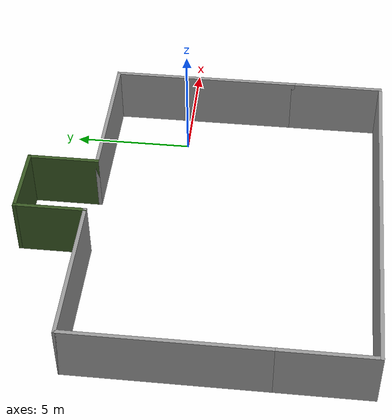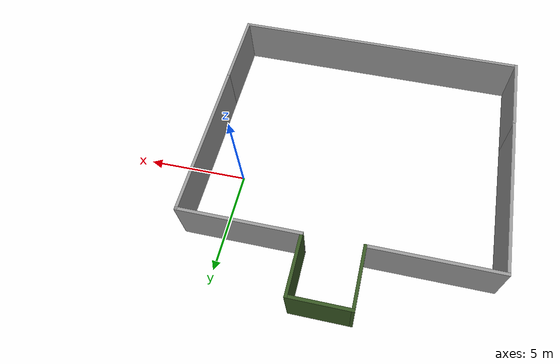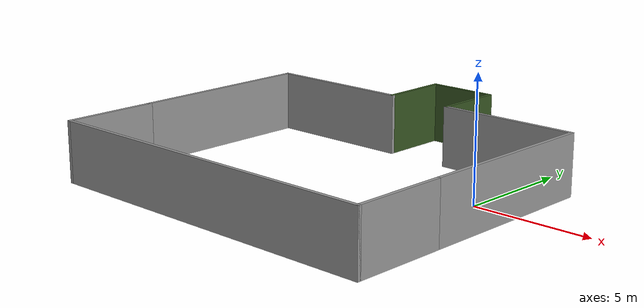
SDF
<?xml version='1.0'?>
<sdf version='1.7'>
  <model name='Imav_outer_structure'>
    <pose>-5.55739 -1.09867 0 0 0 1.57</pose>
    <link name='Wall_11'>
      <collision name='Wall_11_Collision'>
        <geometry>
          <box>
            <size>4 0.15 2.5</size>
          </box>
        </geometry>
        <pose>0 0 1.25 0 -0 0</pose>
      </collision>
      <visual name='Wall_11_Visual'>
        <pose>0 0 1.25 0 -0 0</pose>
        <geometry>
          <box>
            <size>4 0.15 2.5</size>
          </box>
        </geometry>
        <material>
          <script>
            <uri>file://media/materials/scripts/gazebo.material</uri>
            <name>Gazebo/Grey</name>
          </script>
          <ambient>0.74902 0.74902 0.74902 1</ambient>
        </material>
        <meta>
          <layer>0</layer>
        </meta>
      </visual>
      <pose>-5.35 7.425 0 0 -0 3.14159</pose>
    </link>
    <link name='Wall_15'>
      <collision name='Wall_15_Collision'>
        <geometry>
          <box>
            <size>15 0.15 2.5</size>
          </box>
        </geometry>
        <pose>0 0 1.25 0 -0 0</pose>
      </collision>
      <visual name='Wall_15_Visual'>
        <pose>0 0 1.25 0 -0 0</pose>
        <geometry>
          <box>
            <size>15 0.15 2.5</size>
          </box>
        </geometry>
        <material>
          <script>
            <uri>file://media/materials/scripts/gazebo.material</uri>
            <name>Gazebo/Grey</name>
          </script>
          <ambient>0.74902 0.74902 0.74902 1</ambient>
        </material>
        <meta>
          <layer>0</layer>
        </meta>
      </visual>
      <pose>-7.275 0 0 0 -0 -1.5708</pose>
    </link>
    <link name='Wall_17'>
      <collision name='Wall_17_Collision'>
        <geometry>
          <box>
            <size>4 0.15 2.5</size>
          </box>
        </geometry>
        <pose>0 0 1.25 0 -0 0</pose>
      </collision>
      <visual name='Wall_17_Visual'>
        <pose>0 0 1.25 0 -0 0</pose>
        <geometry>
          <box>
            <size>4 0.15 2.5</size>
          </box>
        </geometry>
        <material>
          <script>
            <uri>file://media/materials/scripts/gazebo.material</uri>
            <name>Gazebo/Grey</name>
          </script>
          <ambient>0.74902 0.74902 0.74902 1</ambient>
        </material>
        <meta>
          <layer>0</layer>
        </meta>
      </visual>
      <pose>-5.35 -7.425 0 0 -0 0</pose>
    </link>
    <link name='Wall_18'>
      <collision name='Wall_18_Collision'>
        <geometry>
          <box>
            <size>8 0.15 2.5</size>
          </box>
        </geometry>
        <pose>0 0 1.25 0 -0 0</pose>
      </collision>
      <visual name='Wall_18_Visual'>
        <pose>0 0 1.25 0 -0 0</pose>
        <geometry>
          <box>
            <size>8 0.15 2.5</size>
          </box>
        </geometry>
        <material>
          <script>
            <uri>file://media/materials/scripts/gazebo.material</uri>
            <name>Gazebo/Grey</name>
          </script>
          <ambient>0.74902 0.74902 0.74902 1</ambient>
        </material>
        <meta>
          <layer>0</layer>
        </meta>
      </visual>
      <pose>0.5 -7.425 0 0 -0 0</pose>
    </link>
    <link name='Wall_22'>
      <collision name='Wall_22_Collision'>
        <geometry>
          <box>
            <size>6 0.15 2.5</size>
          </box>
        </geometry>
        <pose>0 0 1.25 0 -0 0</pose>
      </collision>
      <visual name='Wall_22_Visual'>
        <pose>0 0 1.25 0 -0 0</pose>
        <geometry>
          <box>
            <size>6 0.15 2.5</size>
          </box>
        </geometry>
        <material>
          <script>
            <uri>file://media/materials/scripts/gazebo.material</uri>
            <name>Gazebo/Grey</name>
          </script>
          <ambient>0.74902 0.74902 0.74902 1</ambient>
        </material>
        <meta>
          <layer>0</layer>
        </meta>
      </visual>
      <pose>4.425 -4.5 0 0 -0 1.5708</pose>
    </link>
    <link name='Wall_23'>
      <collision name='Wall_23_Collision'>
        <geometry>
          <box>
            <size>3 0.15 2.5</size>
          </box>
        </geometry>
        <pose>0 0 1.25 0 -0 0</pose>
      </collision>
      <visual name='Wall_23_Visual'>
        <pose>0 0 1.25 0 -0 0</pose>
        <geometry>
          <box>
            <size>3 0.15 2.5</size>
          </box>
        </geometry>
        <material>
          <script>
            <uri>file://media/materials/scripts/gazebo.material</uri>
            <name>Gazebo/Grey</name>
          </script>
          <ambient>0.219608 0.341176 0.137255 1</ambient>
        </material>
        <meta>
          <layer>0</layer>
        </meta>
      </visual>
      <pose>5.85 -1.575 0 0 -0 0</pose>
    </link>
    <link name='Wall_24'>
      <collision name='Wall_24_Collision'>
        <geometry>
          <box>
            <size>3 0.15 2.5</size>
          </box>
        </geometry>
        <pose>0 0 1.25 0 -0 0</pose>
      </collision>
      <visual name='Wall_24_Visual'>
        <pose>0 0 1.25 0 -0 0</pose>
        <geometry>
          <box>
            <size>3 0.15 2.5</size>
          </box>
        </geometry>
        <material>
          <script>
            <uri>file://media/materials/scripts/gazebo.material</uri>
            <name>Gazebo/Grey</name>
          </script>
          <ambient>0.219608 0.341176 0.137255 1</ambient>
        </material>
        <meta>
          <layer>0</layer>
        </meta>
      </visual>
      <pose>7.275 -0.15 0 0 -0 1.5708</pose>
    </link>
    <link name='Wall_25'>
      <collision name='Wall_25_Collision'>
        <geometry>
          <box>
            <size>3 0.15 2.5</size>
          </box>
        </geometry>
        <pose>0 0 1.25 0 -0 0</pose>
      </collision>
      <visual name='Wall_25_Visual'>
        <pose>0 0 1.25 0 -0 0</pose>
        <geometry>
          <box>
            <size>3 0.15 2.5</size>
          </box>
        </geometry>
        <material>
          <script>
            <uri>file://media/materials/scripts/gazebo.material</uri>
            <name>Gazebo/Grey</name>
          </script>
          <ambient>0.219608 0.341176 0.137255 1</ambient>
        </material>
        <meta>
          <layer>0</layer>
        </meta>
      </visual>
      <pose>5.85 1.275 0 0 -0 3.14159</pose>
    </link>
    <link name='Wall_27'>
      <collision name='Wall_27_Collision'>
        <geometry>
          <box>
            <size>6.3 0.15 2.5</size>
          </box>
        </geometry>
        <pose>0 0 1.25 0 -0 0</pose>
      </collision>
      <visual name='Wall_27_Visual'>
        <pose>0 0 1.25 0 -0 0</pose>
        <geometry>
          <box>
            <size>6.3 0.15 2.5</size>
          </box>
        </geometry>
        <material>
          <script>
            <uri>file://media/materials/scripts/gazebo.material</uri>
            <name>Gazebo/Grey</name>
          </script>
          <ambient>0.74902 0.74902 0.74902 1</ambient>
        </material>
        <meta>
          <layer>0</layer>
        </meta>
      </visual>
      <pose>4.425 4.35 0 0 -0 -1.5708</pose>
    </link>
    <link name='Wall_9'>
      <collision name='Wall_9_Collision'>
        <geometry>
          <box>
            <size>8 0.15 2.5</size>
          </box>
        </geometry>
        <pose>0 0 1.25 0 -0 0</pose>
      </collision>
      <visual name='Wall_9_Visual'>
        <pose>0 0 1.25 0 -0 0</pose>
        <geometry>
          <box>
            <size>8 0.15 2.5</size>
          </box>
        </geometry>
        <material>
          <script>
            <uri>file://media/materials/scripts/gazebo.material</uri>
            <name>Gazebo/Grey</name>
          </script>
          <ambient>0.74902 0.74902 0.74902 1</ambient>
        </material>
        <meta>
          <layer>0</layer>
        </meta>
      </visual>
      <pose>0.5 7.425 0 0 -0 0</pose>
    </link>
    <static>1</static>
  </model>
</sdf>
